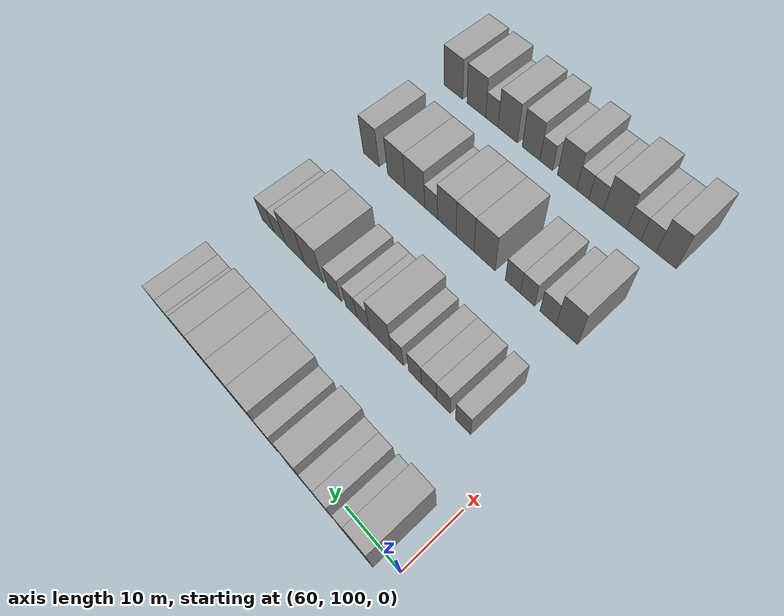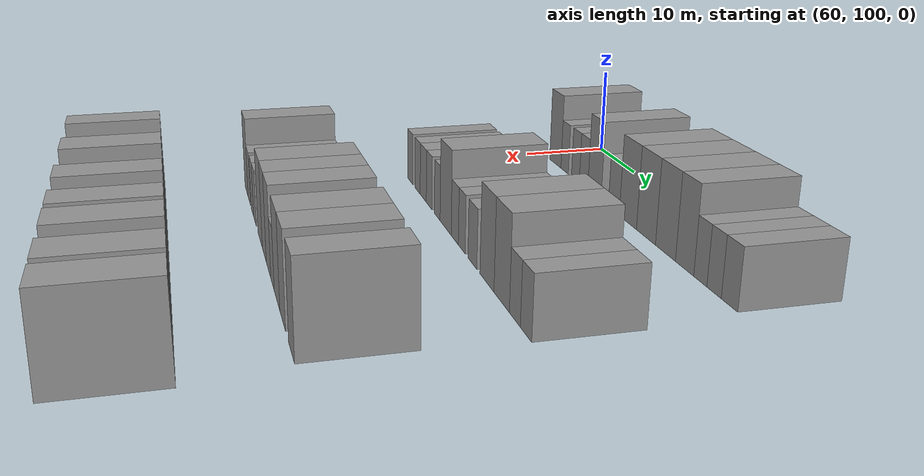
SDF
<sdf version="1.6">
 <world name="default">
  <model name="building_460">
   <static>1</static>
   <pose>63.0000 104.5477 0 0.000000 0.000000 0.000000</pose>
   <link name="link">
    <pose>0 0 4.50 0 0 0</pose>
    <collision name="collision"><geometry><box><size>10.0000 3.9192 9.0000</size></box></geometry></collision>
    <visual name="visual">
     <cast_shadows>0</cast_shadows>
     <geometry><box><size>10.0000 3.9192 9.0000</size></box></geometry>
     <material>
      <script>
       <uri>model://grey_wall/materials/scripts</uri>
       <uri>model://grey_wall/materials/textures</uri>
       <name>vrc/grey_wall</name>
      </script>
     </material>
    </visual>
   </link>
  </model>
  <model name="building_461">
   <static>1</static>
   <pose>63.0000 107.7293 0 0.000000 0.000000 0.000000</pose>
   <link name="link">
    <pose>0 0 3.00 0 0 0</pose>
    <collision name="collision"><geometry><box><size>10.0000 2.4439 6.0000</size></box></geometry></collision>
    <visual name="visual">
     <cast_shadows>0</cast_shadows>
     <geometry><box><size>10.0000 2.4439 6.0000</size></box></geometry>
     <material>
      <script>
       <uri>model://grey_wall/materials/scripts</uri>
       <uri>model://grey_wall/materials/textures</uri>
       <name>vrc/grey_wall</name>
      </script>
     </material>
    </visual>
   </link>
  </model>
  <model name="building_462">
   <static>1</static>
   <pose>63.0000 111.2057 0 0.000000 0.000000 0.000000</pose>
   <link name="link">
    <pose>0 0 3.00 0 0 0</pose>
    <collision name="collision"><geometry><box><size>10.0000 2.5087 6.0000</size></box></geometry></collision>
    <visual name="visual">
     <cast_shadows>0</cast_shadows>
     <geometry><box><size>10.0000 2.5087 6.0000</size></box></geometry>
     <material>
      <script>
       <uri>model://grey_wall/materials/scripts</uri>
       <uri>model://grey_wall/materials/textures</uri>
       <name>vrc/grey_wall</name>
      </script>
     </material>
    </visual>
   </link>
  </model>
  <model name="building_463">
   <static>1</static>
   <pose>63.0000 113.7598 0 0.000000 0.000000 0.000000</pose>
   <link name="link">
    <pose>0 0 3.00 0 0 0</pose>
    <collision name="collision"><geometry><box><size>10.0000 2.5996 6.0000</size></box></geometry></collision>
    <visual name="visual">
     <cast_shadows>0</cast_shadows>
     <geometry><box><size>10.0000 2.5996 6.0000</size></box></geometry>
     <material>
      <script>
       <uri>model://grey_wall/materials/scripts</uri>
       <uri>model://grey_wall/materials/textures</uri>
       <name>vrc/grey_wall</name>
      </script>
     </material>
    </visual>
   </link>
  </model>
  <model name="building_464">
   <static>1</static>
   <pose>63.0000 116.9877 0 0.000000 0.000000 0.000000</pose>
   <link name="link">
    <pose>0 0 4.50 0 0 0</pose>
    <collision name="collision"><geometry><box><size>10.0000 3.8562 9.0000</size></box></geometry></collision>
    <visual name="visual">
     <cast_shadows>0</cast_shadows>
     <geometry><box><size>10.0000 3.8562 9.0000</size></box></geometry>
     <material>
      <script>
       <uri>model://grey_wall/materials/scripts</uri>
       <uri>model://grey_wall/materials/textures</uri>
       <name>vrc/grey_wall</name>
      </script>
     </material>
    </visual>
   </link>
  </model>
  <model name="building_465">
   <static>1</static>
   <pose>63.0000 122.3874 0 0.000000 0.000000 0.000000</pose>
   <link name="link">
    <pose>0 0 3.00 0 0 0</pose>
    <collision name="collision"><geometry><box><size>10.0000 2.9430 6.0000</size></box></geometry></collision>
    <visual name="visual">
     <cast_shadows>0</cast_shadows>
     <geometry><box><size>10.0000 2.9430 6.0000</size></box></geometry>
     <material>
      <script>
       <uri>model://grey_wall/materials/scripts</uri>
       <uri>model://grey_wall/materials/textures</uri>
       <name>vrc/grey_wall</name>
      </script>
     </material>
    </visual>
   </link>
  </model>
  <model name="building_466">
   <static>1</static>
   <pose>63.0000 126.0303 0 0.000000 0.000000 0.000000</pose>
   <link name="link">
    <pose>0 0 4.50 0 0 0</pose>
    <collision name="collision"><geometry><box><size>10.0000 4.3429 9.0000</size></box></geometry></collision>
    <visual name="visual">
     <cast_shadows>0</cast_shadows>
     <geometry><box><size>10.0000 4.3429 9.0000</size></box></geometry>
     <material>
      <script>
       <uri>model://grey_wall/materials/scripts</uri>
       <uri>model://grey_wall/materials/textures</uri>
       <name>vrc/grey_wall</name>
      </script>
     </material>
    </visual>
   </link>
  </model>
  <model name="building_467">
   <static>1</static>
   <pose>63.0000 130.4237 0 0.000000 0.000000 0.000000</pose>
   <link name="link">
    <pose>0 0 4.50 0 0 0</pose>
    <collision name="collision"><geometry><box><size>10.0000 4.4438 9.0000</size></box></geometry></collision>
    <visual name="visual">
     <cast_shadows>0</cast_shadows>
     <geometry><box><size>10.0000 4.4438 9.0000</size></box></geometry>
     <material>
      <script>
       <uri>model://grey_wall/materials/scripts</uri>
       <uri>model://grey_wall/materials/textures</uri>
       <name>vrc/grey_wall</name>
      </script>
     </material>
    </visual>
   </link>
  </model>
  <model name="building_468">
   <static>1</static>
   <pose>63.0000 134.8110 0 0.000000 0.000000 0.000000</pose>
   <link name="link">
    <pose>0 0 4.50 0 0 0</pose>
    <collision name="collision"><geometry><box><size>10.0000 4.3308 9.0000</size></box></geometry></collision>
    <visual name="visual">
     <cast_shadows>0</cast_shadows>
     <geometry><box><size>10.0000 4.3308 9.0000</size></box></geometry>
     <material>
      <script>
       <uri>model://grey_wall/materials/scripts</uri>
       <uri>model://grey_wall/materials/textures</uri>
       <name>vrc/grey_wall</name>
      </script>
     </material>
    </visual>
   </link>
  </model>
  <model name="building_469">
   <static>1</static>
   <pose>63.0000 138.8194 0 0.000000 0.000000 0.000000</pose>
   <link name="link">
    <pose>0 0 4.50 0 0 0</pose>
    <collision name="collision"><geometry><box><size>10.0000 3.6861 9.0000</size></box></geometry></collision>
    <visual name="visual">
     <cast_shadows>0</cast_shadows>
     <geometry><box><size>10.0000 3.6861 9.0000</size></box></geometry>
     <material>
      <script>
       <uri>model://grey_wall/materials/scripts</uri>
       <uri>model://grey_wall/materials/textures</uri>
       <name>vrc/grey_wall</name>
      </script>
     </material>
    </visual>
   </link>
  </model>
  <model name="building_470">
   <static>1</static>
   <pose>63.0000 141.9071 0 0.000000 0.000000 0.000000</pose>
   <link name="link">
    <pose>0 0 3.00 0 0 0</pose>
    <collision name="collision"><geometry><box><size>10.0000 2.4891 6.0000</size></box></geometry></collision>
    <visual name="visual">
     <cast_shadows>0</cast_shadows>
     <geometry><box><size>10.0000 2.4891 6.0000</size></box></geometry>
     <material>
      <script>
       <uri>model://grey_wall/materials/scripts</uri>
       <uri>model://grey_wall/materials/textures</uri>
       <name>vrc/grey_wall</name>
      </script>
     </material>
    </visual>
   </link>
  </model>
  <model name="building_471">
   <static>1</static>
   <pose>63.0000 144.4588 0 0.000000 0.000000 0.000000</pose>
   <link name="link">
    <pose>0 0 3.00 0 0 0</pose>
    <collision name="collision"><geometry><box><size>10.0000 2.6144 6.0000</size></box></geometry></collision>
    <visual name="visual">
     <cast_shadows>0</cast_shadows>
     <geometry><box><size>10.0000 2.6144 6.0000</size></box></geometry>
     <material>
      <script>
       <uri>model://grey_wall/materials/scripts</uri>
       <uri>model://grey_wall/materials/textures</uri>
       <name>vrc/grey_wall</name>
      </script>
     </material>
    </visual>
   </link>
  </model>
  <model name="building_472">
   <static>1</static>
   <pose>63.0000 147.1888 0 0.000000 0.000000 0.000000</pose>
   <link name="link">
    <pose>0 0 3.00 0 0 0</pose>
    <collision name="collision"><geometry><box><size>10.0000 2.8455 6.0000</size></box></geometry></collision>
    <visual name="visual">
     <cast_shadows>0</cast_shadows>
     <geometry><box><size>10.0000 2.8455 6.0000</size></box></geometry>
     <material>
      <script>
       <uri>model://grey_wall/materials/scripts</uri>
       <uri>model://grey_wall/materials/textures</uri>
       <name>vrc/grey_wall</name>
      </script>
     </material>
    </visual>
   </link>
  </model>
  <model name="building_638">
   <static>1</static>
   <pose>82.0000 107.2564 0 0.000000 0.000000 0.000000</pose>
   <link name="link">
    <pose>0 0 3.00 0 0 0</pose>
    <collision name="collision"><geometry><box><size>10.0000 2.7361 6.0000</size></box></geometry></collision>
    <visual name="visual">
     <cast_shadows>0</cast_shadows>
     <geometry><box><size>10.0000 2.7361 6.0000</size></box></geometry>
     <material>
      <script>
       <uri>model://grey_wall/materials/scripts</uri>
       <uri>model://grey_wall/materials/textures</uri>
       <name>vrc/grey_wall</name>
      </script>
     </material>
    </visual>
   </link>
  </model>
  <model name="building_639">
   <static>1</static>
   <pose>82.0000 110.8932 0 0.000000 0.000000 0.000000</pose>
   <link name="link">
    <pose>0 0 3.00 0 0 0</pose>
    <collision name="collision"><geometry><box><size>10.0000 2.5376 6.0000</size></box></geometry></collision>
    <visual name="visual">
     <cast_shadows>0</cast_shadows>
     <geometry><box><size>10.0000 2.5376 6.0000</size></box></geometry>
     <material>
      <script>
       <uri>model://grey_wall/materials/scripts</uri>
       <uri>model://grey_wall/materials/textures</uri>
       <name>vrc/grey_wall</name>
      </script>
     </material>
    </visual>
   </link>
  </model>
  <model name="building_640">
   <static>1</static>
   <pose>82.0000 113.5886 0 0.000000 0.000000 0.000000</pose>
   <link name="link">
    <pose>0 0 3.00 0 0 0</pose>
    <collision name="collision"><geometry><box><size>10.0000 2.8531 6.0000</size></box></geometry></collision>
    <visual name="visual">
     <cast_shadows>0</cast_shadows>
     <geometry><box><size>10.0000 2.8531 6.0000</size></box></geometry>
     <material>
      <script>
       <uri>model://grey_wall/materials/scripts</uri>
       <uri>model://grey_wall/materials/textures</uri>
       <name>vrc/grey_wall</name>
      </script>
     </material>
    </visual>
   </link>
  </model>
  <model name="building_641">
   <static>1</static>
   <pose>82.0000 116.3040 0 0.000000 0.000000 0.000000</pose>
   <link name="link">
    <pose>0 0 3.00 0 0 0</pose>
    <collision name="collision"><geometry><box><size>10.0000 2.5777 6.0000</size></box></geometry></collision>
    <visual name="visual">
     <cast_shadows>0</cast_shadows>
     <geometry><box><size>10.0000 2.5777 6.0000</size></box></geometry>
     <material>
      <script>
       <uri>model://grey_wall/materials/scripts</uri>
       <uri>model://grey_wall/materials/textures</uri>
       <name>vrc/grey_wall</name>
      </script>
     </material>
    </visual>
   </link>
  </model>
  <model name="building_642">
   <static>1</static>
   <pose>82.0000 119.8088 0 0.000000 0.000000 0.000000</pose>
   <link name="link">
    <pose>0 0 3.00 0 0 0</pose>
    <collision name="collision"><geometry><box><size>10.0000 2.4319 6.0000</size></box></geometry></collision>
    <visual name="visual">
     <cast_shadows>0</cast_shadows>
     <geometry><box><size>10.0000 2.4319 6.0000</size></box></geometry>
     <material>
      <script>
       <uri>model://grey_wall/materials/scripts</uri>
       <uri>model://grey_wall/materials/textures</uri>
       <name>vrc/grey_wall</name>
      </script>
     </material>
    </visual>
   </link>
  </model>
  <model name="building_643">
   <static>1</static>
   <pose>82.0000 123.2488 0 0.000000 0.000000 0.000000</pose>
   <link name="link">
    <pose>0 0 4.50 0 0 0</pose>
    <collision name="collision"><geometry><box><size>10.0000 4.4482 9.0000</size></box></geometry></collision>
    <visual name="visual">
     <cast_shadows>0</cast_shadows>
     <geometry><box><size>10.0000 4.4482 9.0000</size></box></geometry>
     <material>
      <script>
       <uri>model://grey_wall/materials/scripts</uri>
       <uri>model://grey_wall/materials/textures</uri>
       <name>vrc/grey_wall</name>
      </script>
     </material>
    </visual>
   </link>
  </model>
  <model name="building_644">
   <static>1</static>
   <pose>82.0000 126.8173 0 0.000000 0.000000 0.000000</pose>
   <link name="link">
    <pose>0 0 3.00 0 0 0</pose>
    <collision name="collision"><geometry><box><size>10.0000 2.6888 6.0000</size></box></geometry></collision>
    <visual name="visual">
     <cast_shadows>0</cast_shadows>
     <geometry><box><size>10.0000 2.6888 6.0000</size></box></geometry>
     <material>
      <script>
       <uri>model://grey_wall/materials/scripts</uri>
       <uri>model://grey_wall/materials/textures</uri>
       <name>vrc/grey_wall</name>
      </script>
     </material>
    </visual>
   </link>
  </model>
  <model name="building_645">
   <static>1</static>
   <pose>82.0000 129.3812 0 0.000000 0.000000 0.000000</pose>
   <link name="link">
    <pose>0 0 3.00 0 0 0</pose>
    <collision name="collision"><geometry><box><size>10.0000 2.4391 6.0000</size></box></geometry></collision>
    <visual name="visual">
     <cast_shadows>0</cast_shadows>
     <geometry><box><size>10.0000 2.4391 6.0000</size></box></geometry>
     <material>
      <script>
       <uri>model://grey_wall/materials/scripts</uri>
       <uri>model://grey_wall/materials/textures</uri>
       <name>vrc/grey_wall</name>
      </script>
     </material>
    </visual>
   </link>
  </model>
  <model name="building_646">
   <static>1</static>
   <pose>82.0000 133.0914 0 0.000000 0.000000 0.000000</pose>
   <link name="link">
    <pose>0 0 3.00 0 0 0</pose>
    <collision name="collision"><geometry><box><size>10.0000 2.9813 6.0000</size></box></geometry></collision>
    <visual name="visual">
     <cast_shadows>0</cast_shadows>
     <geometry><box><size>10.0000 2.9813 6.0000</size></box></geometry>
     <material>
      <script>
       <uri>model://grey_wall/materials/scripts</uri>
       <uri>model://grey_wall/materials/textures</uri>
       <name>vrc/grey_wall</name>
      </script>
     </material>
    </visual>
   </link>
  </model>
  <model name="building_647">
   <static>1</static>
   <pose>82.0000 137.7548 0 0.000000 0.000000 0.000000</pose>
   <link name="link">
    <pose>0 0 4.50 0 0 0</pose>
    <collision name="collision"><geometry><box><size>10.0000 4.3455 9.0000</size></box></geometry></collision>
    <visual name="visual">
     <cast_shadows>0</cast_shadows>
     <geometry><box><size>10.0000 4.3455 9.0000</size></box></geometry>
     <material>
      <script>
       <uri>model://grey_wall/materials/scripts</uri>
       <uri>model://grey_wall/materials/textures</uri>
       <name>vrc/grey_wall</name>
      </script>
     </material>
    </visual>
   </link>
  </model>
  <model name="building_648">
   <static>1</static>
   <pose>82.0000 142.1123 0 0.000000 0.000000 0.000000</pose>
   <link name="link">
    <pose>0 0 4.50 0 0 0</pose>
    <collision name="collision"><geometry><box><size>10.0000 4.3694 9.0000</size></box></geometry></collision>
    <visual name="visual">
     <cast_shadows>0</cast_shadows>
     <geometry><box><size>10.0000 4.3694 9.0000</size></box></geometry>
     <material>
      <script>
       <uri>model://grey_wall/materials/scripts</uri>
       <uri>model://grey_wall/materials/textures</uri>
       <name>vrc/grey_wall</name>
      </script>
     </material>
    </visual>
   </link>
  </model>
  <model name="building_649">
   <static>1</static>
   <pose>82.0000 145.7367 0 0.000000 0.000000 0.000000</pose>
   <link name="link">
    <pose>0 0 3.00 0 0 0</pose>
    <collision name="collision"><geometry><box><size>10.0000 2.8795 6.0000</size></box></geometry></collision>
    <visual name="visual">
     <cast_shadows>0</cast_shadows>
     <geometry><box><size>10.0000 2.8795 6.0000</size></box></geometry>
     <material>
      <script>
       <uri>model://grey_wall/materials/scripts</uri>
       <uri>model://grey_wall/materials/textures</uri>
       <name>vrc/grey_wall</name>
      </script>
     </material>
    </visual>
   </link>
  </model>
  <model name="building_650">
   <static>1</static>
   <pose>82.0000 148.6009 0 0.000000 0.000000 0.000000</pose>
   <link name="link">
    <pose>0 0 3.00 0 0 0</pose>
    <collision name="collision"><geometry><box><size>10.0000 2.8488 6.0000</size></box></geometry></collision>
    <visual name="visual">
     <cast_shadows>0</cast_shadows>
     <geometry><box><size>10.0000 2.8488 6.0000</size></box></geometry>
     <material>
      <script>
       <uri>model://grey_wall/materials/scripts</uri>
       <uri>model://grey_wall/materials/textures</uri>
       <name>vrc/grey_wall</name>
      </script>
     </material>
    </visual>
   </link>
  </model>
  <model name="building_809">
   <static>1</static>
   <pose>101.0000 106.6956 0 0.000000 0.000000 0.000000</pose>
   <link name="link">
    <pose>0 0 4.50 0 0 0</pose>
    <collision name="collision"><geometry><box><size>10.0000 3.8991 9.0000</size></box></geometry></collision>
    <visual name="visual">
     <cast_shadows>0</cast_shadows>
     <geometry><box><size>10.0000 3.8991 9.0000</size></box></geometry>
     <material>
      <script>
       <uri>model://grey_wall/materials/scripts</uri>
       <uri>model://grey_wall/materials/textures</uri>
       <name>vrc/grey_wall</name>
      </script>
     </material>
    </visual>
   </link>
  </model>
  <model name="building_810">
   <static>1</static>
   <pose>101.0000 110.1404 0 0.000000 0.000000 0.000000</pose>
   <link name="link">
    <pose>0 0 3.00 0 0 0</pose>
    <collision name="collision"><geometry><box><size>10.0000 2.9905 6.0000</size></box></geometry></collision>
    <visual name="visual">
     <cast_shadows>0</cast_shadows>
     <geometry><box><size>10.0000 2.9905 6.0000</size></box></geometry>
     <material>
      <script>
       <uri>model://grey_wall/materials/scripts</uri>
       <uri>model://grey_wall/materials/textures</uri>
       <name>vrc/grey_wall</name>
      </script>
     </material>
    </visual>
   </link>
  </model>
  <model name="building_811">
   <static>1</static>
   <pose>101.0000 113.9992 0 0.000000 0.000000 0.000000</pose>
   <link name="link">
    <pose>0 0 3.00 0 0 0</pose>
    <collision name="collision"><geometry><box><size>10.0000 2.7270 6.0000</size></box></geometry></collision>
    <visual name="visual">
     <cast_shadows>0</cast_shadows>
     <geometry><box><size>10.0000 2.7270 6.0000</size></box></geometry>
     <material>
      <script>
       <uri>model://grey_wall/materials/scripts</uri>
       <uri>model://grey_wall/materials/textures</uri>
       <name>vrc/grey_wall</name>
      </script>
     </material>
    </visual>
   </link>
  </model>
  <model name="building_812">
   <static>1</static>
   <pose>101.0000 116.8418 0 0.000000 0.000000 0.000000</pose>
   <link name="link">
    <pose>0 0 3.00 0 0 0</pose>
    <collision name="collision"><geometry><box><size>10.0000 2.9583 6.0000</size></box></geometry></collision>
    <visual name="visual">
     <cast_shadows>0</cast_shadows>
     <geometry><box><size>10.0000 2.9583 6.0000</size></box></geometry>
     <material>
      <script>
       <uri>model://grey_wall/materials/scripts</uri>
       <uri>model://grey_wall/materials/textures</uri>
       <name>vrc/grey_wall</name>
      </script>
     </material>
    </visual>
   </link>
  </model>
  <model name="building_813">
   <static>1</static>
   <pose>101.0000 122.4758 0 0.000000 0.000000 0.000000</pose>
   <link name="link">
    <pose>0 0 4.50 0 0 0</pose>
    <collision name="collision"><geometry><box><size>10.0000 4.3097 9.0000</size></box></geometry></collision>
    <visual name="visual">
     <cast_shadows>0</cast_shadows>
     <geometry><box><size>10.0000 4.3097 9.0000</size></box></geometry>
     <material>
      <script>
       <uri>model://grey_wall/materials/scripts</uri>
       <uri>model://grey_wall/materials/textures</uri>
       <name>vrc/grey_wall</name>
      </script>
     </material>
    </visual>
   </link>
  </model>
  <model name="building_814">
   <static>1</static>
   <pose>101.0000 126.5129 0 0.000000 0.000000 0.000000</pose>
   <link name="link">
    <pose>0 0 4.50 0 0 0</pose>
    <collision name="collision"><geometry><box><size>10.0000 3.7645 9.0000</size></box></geometry></collision>
    <visual name="visual">
     <cast_shadows>0</cast_shadows>
     <geometry><box><size>10.0000 3.7645 9.0000</size></box></geometry>
     <material>
      <script>
       <uri>model://grey_wall/materials/scripts</uri>
       <uri>model://grey_wall/materials/textures</uri>
       <name>vrc/grey_wall</name>
      </script>
     </material>
    </visual>
   </link>
  </model>
  <model name="building_815">
   <static>1</static>
   <pose>101.0000 130.3658 0 0.000000 0.000000 0.000000</pose>
   <link name="link">
    <pose>0 0 4.50 0 0 0</pose>
    <collision name="collision"><geometry><box><size>10.0000 3.9412 9.0000</size></box></geometry></collision>
    <visual name="visual">
     <cast_shadows>0</cast_shadows>
     <geometry><box><size>10.0000 3.9412 9.0000</size></box></geometry>
     <material>
      <script>
       <uri>model://grey_wall/materials/scripts</uri>
       <uri>model://grey_wall/materials/textures</uri>
       <name>vrc/grey_wall</name>
      </script>
     </material>
    </visual>
   </link>
  </model>
  <model name="building_816">
   <static>1</static>
   <pose>101.0000 133.7358 0 0.000000 0.000000 0.000000</pose>
   <link name="link">
    <pose>0 0 3.00 0 0 0</pose>
    <collision name="collision"><geometry><box><size>10.0000 2.7989 6.0000</size></box></geometry></collision>
    <visual name="visual">
     <cast_shadows>0</cast_shadows>
     <geometry><box><size>10.0000 2.7989 6.0000</size></box></geometry>
     <material>
      <script>
       <uri>model://grey_wall/materials/scripts</uri>
       <uri>model://grey_wall/materials/textures</uri>
       <name>vrc/grey_wall</name>
      </script>
     </material>
    </visual>
   </link>
  </model>
  <model name="building_817">
   <static>1</static>
   <pose>101.0000 137.3330 0 0.000000 0.000000 0.000000</pose>
   <link name="link">
    <pose>0 0 4.50 0 0 0</pose>
    <collision name="collision"><geometry><box><size>10.0000 4.3954 9.0000</size></box></geometry></collision>
    <visual name="visual">
     <cast_shadows>0</cast_shadows>
     <geometry><box><size>10.0000 4.3954 9.0000</size></box></geometry>
     <material>
      <script>
       <uri>model://grey_wall/materials/scripts</uri>
       <uri>model://grey_wall/materials/textures</uri>
       <name>vrc/grey_wall</name>
      </script>
     </material>
    </visual>
   </link>
  </model>
  <model name="building_818">
   <static>1</static>
   <pose>101.0000 141.5638 0 0.000000 0.000000 0.000000</pose>
   <link name="link">
    <pose>0 0 4.50 0 0 0</pose>
    <collision name="collision"><geometry><box><size>10.0000 4.0663 9.0000</size></box></geometry></collision>
    <visual name="visual">
     <cast_shadows>0</cast_shadows>
     <geometry><box><size>10.0000 4.0663 9.0000</size></box></geometry>
     <material>
      <script>
       <uri>model://grey_wall/materials/scripts</uri>
       <uri>model://grey_wall/materials/textures</uri>
       <name>vrc/grey_wall</name>
      </script>
     </material>
    </visual>
   </link>
  </model>
  <model name="building_819">
   <static>1</static>
   <pose>101.0000 147.4891 0 0.000000 0.000000 0.000000</pose>
   <link name="link">
    <pose>0 0 4.50 0 0 0</pose>
    <collision name="collision"><geometry><box><size>10.0000 3.7843 9.0000</size></box></geometry></collision>
    <visual name="visual">
     <cast_shadows>0</cast_shadows>
     <geometry><box><size>10.0000 3.7843 9.0000</size></box></geometry>
     <material>
      <script>
       <uri>model://grey_wall/materials/scripts</uri>
       <uri>model://grey_wall/materials/textures</uri>
       <name>vrc/grey_wall</name>
      </script>
     </material>
    </visual>
   </link>
  </model>
  <model name="building_988">
   <static>1</static>
   <pose>120.0000 104.5965 0 0.000000 0.000000 0.000000</pose>
   <link name="link">
    <pose>0 0 4.50 0 0 0</pose>
    <collision name="collision"><geometry><box><size>10.0000 3.6540 9.0000</size></box></geometry></collision>
    <visual name="visual">
     <cast_shadows>0</cast_shadows>
     <geometry><box><size>10.0000 3.6540 9.0000</size></box></geometry>
     <material>
      <script>
       <uri>model://grey_wall/materials/scripts</uri>
       <uri>model://grey_wall/materials/textures</uri>
       <name>vrc/grey_wall</name>
      </script>
     </material>
    </visual>
   </link>
  </model>
  <model name="building_989">
   <static>1</static>
   <pose>120.0000 107.8396 0 0.000000 0.000000 0.000000</pose>
   <link name="link">
    <pose>0 0 3.00 0 0 0</pose>
    <collision name="collision"><geometry><box><size>10.0000 2.8322 6.0000</size></box></geometry></collision>
    <visual name="visual">
     <cast_shadows>0</cast_shadows>
     <geometry><box><size>10.0000 2.8322 6.0000</size></box></geometry>
     <material>
      <script>
       <uri>model://grey_wall/materials/scripts</uri>
       <uri>model://grey_wall/materials/textures</uri>
       <name>vrc/grey_wall</name>
      </script>
     </material>
    </visual>
   </link>
  </model>
  <model name="building_990">
   <static>1</static>
   <pose>120.0000 110.5935 0 0.000000 0.000000 0.000000</pose>
   <link name="link">
    <pose>0 0 3.00 0 0 0</pose>
    <collision name="collision"><geometry><box><size>10.0000 2.6756 6.0000</size></box></geometry></collision>
    <visual name="visual">
     <cast_shadows>0</cast_shadows>
     <geometry><box><size>10.0000 2.6756 6.0000</size></box></geometry>
     <material>
      <script>
       <uri>model://grey_wall/materials/scripts</uri>
       <uri>model://grey_wall/materials/textures</uri>
       <name>vrc/grey_wall</name>
      </script>
     </material>
    </visual>
   </link>
  </model>
  <model name="building_991">
   <static>1</static>
   <pose>120.0000 114.1400 0 0.000000 0.000000 0.000000</pose>
   <link name="link">
    <pose>0 0 4.50 0 0 0</pose>
    <collision name="collision"><geometry><box><size>10.0000 4.4176 9.0000</size></box></geometry></collision>
    <visual name="visual">
     <cast_shadows>0</cast_shadows>
     <geometry><box><size>10.0000 4.4176 9.0000</size></box></geometry>
     <material>
      <script>
       <uri>model://grey_wall/materials/scripts</uri>
       <uri>model://grey_wall/materials/textures</uri>
       <name>vrc/grey_wall</name>
      </script>
     </material>
    </visual>
   </link>
  </model>
  <model name="building_992">
   <static>1</static>
   <pose>120.0000 117.8076 0 0.000000 0.000000 0.000000</pose>
   <link name="link">
    <pose>0 0 3.00 0 0 0</pose>
    <collision name="collision"><geometry><box><size>10.0000 2.9176 6.0000</size></box></geometry></collision>
    <visual name="visual">
     <cast_shadows>0</cast_shadows>
     <geometry><box><size>10.0000 2.9176 6.0000</size></box></geometry>
     <material>
      <script>
       <uri>model://grey_wall/materials/scripts</uri>
       <uri>model://grey_wall/materials/textures</uri>
       <name>vrc/grey_wall</name>
      </script>
     </material>
    </visual>
   </link>
  </model>
  <model name="building_993">
   <static>1</static>
   <pose>120.0000 120.4786 0 0.000000 0.000000 0.000000</pose>
   <link name="link">
    <pose>0 0 3.00 0 0 0</pose>
    <collision name="collision"><geometry><box><size>10.0000 2.4244 6.0000</size></box></geometry></collision>
    <visual name="visual">
     <cast_shadows>0</cast_shadows>
     <geometry><box><size>10.0000 2.4244 6.0000</size></box></geometry>
     <material>
      <script>
       <uri>model://grey_wall/materials/scripts</uri>
       <uri>model://grey_wall/materials/textures</uri>
       <name>vrc/grey_wall</name>
      </script>
     </material>
    </visual>
   </link>
  </model>
  <model name="building_994">
   <static>1</static>
   <pose>120.0000 123.6583 0 0.000000 0.000000 0.000000</pose>
   <link name="link">
    <pose>0 0 4.50 0 0 0</pose>
    <collision name="collision"><geometry><box><size>10.0000 3.9351 9.0000</size></box></geometry></collision>
    <visual name="visual">
     <cast_shadows>0</cast_shadows>
     <geometry><box><size>10.0000 3.9351 9.0000</size></box></geometry>
     <material>
      <script>
       <uri>model://grey_wall/materials/scripts</uri>
       <uri>model://grey_wall/materials/textures</uri>
       <name>vrc/grey_wall</name>
      </script>
     </material>
    </visual>
   </link>
  </model>
  <model name="building_995">
   <static>1</static>
   <pose>120.0000 127.9546 0 0.000000 0.000000 0.000000</pose>
   <link name="link">
    <pose>0 0 3.00 0 0 0</pose>
    <collision name="collision"><geometry><box><size>10.0000 2.6575 6.0000</size></box></geometry></collision>
    <visual name="visual">
     <cast_shadows>0</cast_shadows>
     <geometry><box><size>10.0000 2.6575 6.0000</size></box></geometry>
     <material>
      <script>
       <uri>model://grey_wall/materials/scripts</uri>
       <uri>model://grey_wall/materials/textures</uri>
       <name>vrc/grey_wall</name>
      </script>
     </material>
    </visual>
   </link>
  </model>
  <model name="building_996">
   <static>1</static>
   <pose>120.0000 131.2022 0 0.000000 0.000000 0.000000</pose>
   <link name="link">
    <pose>0 0 4.50 0 0 0</pose>
    <collision name="collision"><geometry><box><size>10.0000 3.8376 9.0000</size></box></geometry></collision>
    <visual name="visual">
     <cast_shadows>0</cast_shadows>
     <geometry><box><size>10.0000 3.8376 9.0000</size></box></geometry>
     <material>
      <script>
       <uri>model://grey_wall/materials/scripts</uri>
       <uri>model://grey_wall/materials/textures</uri>
       <name>vrc/grey_wall</name>
      </script>
     </material>
    </visual>
   </link>
  </model>
  <model name="building_997">
   <static>1</static>
   <pose>120.0000 136.2807 0 0.000000 0.000000 0.000000</pose>
   <link name="link">
    <pose>0 0 4.50 0 0 0</pose>
    <collision name="collision"><geometry><box><size>10.0000 4.3194 9.0000</size></box></geometry></collision>
    <visual name="visual">
     <cast_shadows>0</cast_shadows>
     <geometry><box><size>10.0000 4.3194 9.0000</size></box></geometry>
     <material>
      <script>
       <uri>model://grey_wall/materials/scripts</uri>
       <uri>model://grey_wall/materials/textures</uri>
       <name>vrc/grey_wall</name>
      </script>
     </material>
    </visual>
   </link>
  </model>
  <model name="building_998">
   <static>1</static>
   <pose>120.0000 139.8544 0 0.000000 0.000000 0.000000</pose>
   <link name="link">
    <pose>0 0 3.00 0 0 0</pose>
    <collision name="collision"><geometry><box><size>10.0000 2.8280 6.0000</size></box></geometry></collision>
    <visual name="visual">
     <cast_shadows>0</cast_shadows>
     <geometry><box><size>10.0000 2.8280 6.0000</size></box></geometry>
     <material>
      <script>
       <uri>model://grey_wall/materials/scripts</uri>
       <uri>model://grey_wall/materials/textures</uri>
       <name>vrc/grey_wall</name>
      </script>
     </material>
    </visual>
   </link>
  </model>
  <model name="building_999">
   <static>1</static>
   <pose>120.0000 143.4425 0 0.000000 0.000000 0.000000</pose>
   <link name="link">
    <pose>0 0 4.50 0 0 0</pose>
    <collision name="collision"><geometry><box><size>10.0000 4.3484 9.0000</size></box></geometry></collision>
    <visual name="visual">
     <cast_shadows>0</cast_shadows>
     <geometry><box><size>10.0000 4.3484 9.0000</size></box></geometry>
     <material>
      <script>
       <uri>model://grey_wall/materials/scripts</uri>
       <uri>model://grey_wall/materials/textures</uri>
       <name>vrc/grey_wall</name>
      </script>
     </material>
    </visual>
   </link>
  </model>
  <model name="building_1000">
   <static>1</static>
   <pose>120.0000 148.8653 0 0.000000 0.000000 0.000000</pose>
   <link name="link">
    <pose>0 0 4.50 0 0 0</pose>
    <collision name="collision"><geometry><box><size>10.0000 4.4972 9.0000</size></box></geometry></collision>
    <visual name="visual">
     <cast_shadows>0</cast_shadows>
     <geometry><box><size>10.0000 4.4972 9.0000</size></box></geometry>
     <material>
      <script>
       <uri>model://grey_wall/materials/scripts</uri>
       <uri>model://grey_wall/materials/textures</uri>
       <name>vrc/grey_wall</name>
      </script>
     </material>
    </visual>
   </link>
  </model>
 </world>
</sdf>
